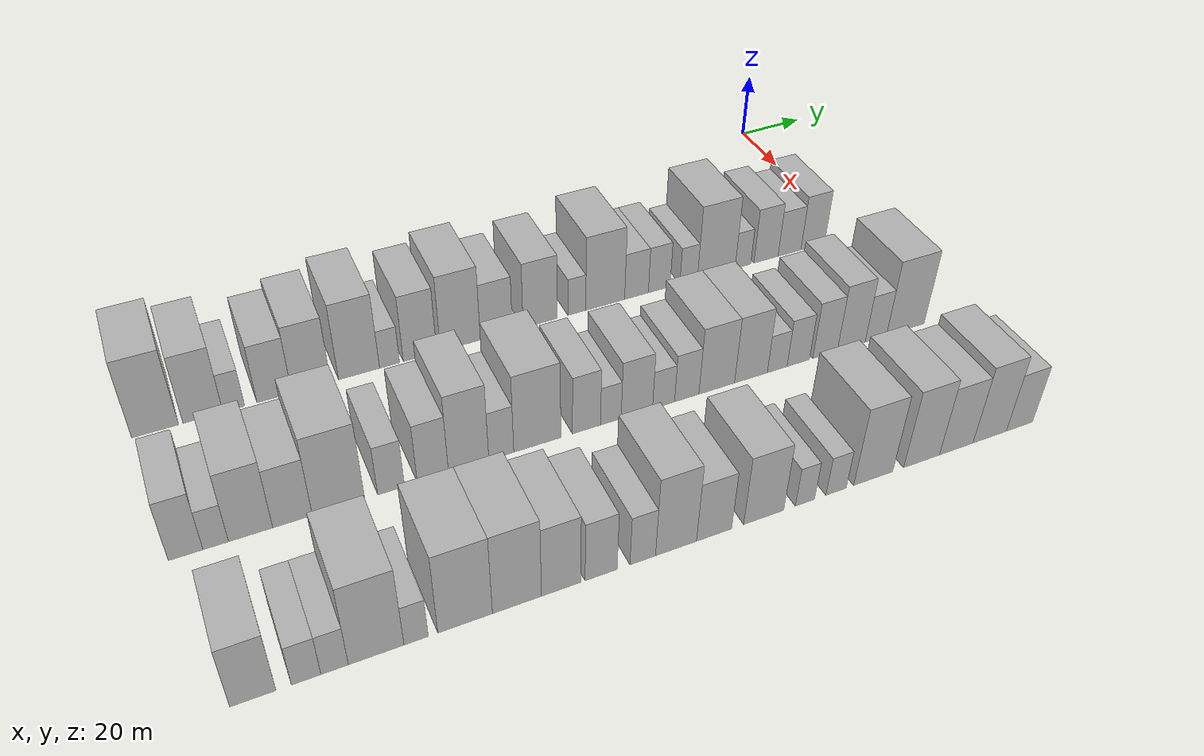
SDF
<sdf version="1.6">
 <world name="default">
  <model name="building_22">
   <static>1</static>
   <pose>50.0000 -193.8606 0 0.000000 0.000000 0.000000</pose>
   <link name="link">
    <pose>0 0 12.00 0 0 0</pose>
    <collision name="collision"><geometry><box><size>20.0000 10.9437 24.0000</size></box></geometry></collision>
    <visual name="visual">
     <cast_shadows>0</cast_shadows>
     <geometry><box><size>20.0000 10.9437 24.0000</size></box></geometry>
     <material>
      <script>
       <uri>model://HANNAS_wall/materials/scripts</uri>
       <uri>model://HANNAS_wall/materials/textures</uri>
       <name>vrc/HANNAS_wall</name>
      </script>
     </material>
    </visual>
   </link>
  </model>
  <model name="building_23">
   <static>1</static>
   <pose>50.0000 -182.6399 0 0.000000 0.000000 0.000000</pose>
   <link name="link">
    <pose>0 0 10.50 0 0 0</pose>
    <collision name="collision"><geometry><box><size>20.0000 9.4976 21.0000</size></box></geometry></collision>
    <visual name="visual">
     <cast_shadows>0</cast_shadows>
     <geometry><box><size>20.0000 9.4976 21.0000</size></box></geometry>
     <material>
      <script>
       <uri>model://HANNAS_wall/materials/scripts</uri>
       <uri>model://HANNAS_wall/materials/textures</uri>
       <name>vrc/HANNAS_wall</name>
      </script>
     </material>
    </visual>
   </link>
  </model>
  <model name="building_24">
   <static>1</static>
   <pose>50.0000 -175.2718 0 0.000000 0.000000 0.000000</pose>
   <link name="link">
    <pose>0 0 6.00 0 0 0</pose>
    <collision name="collision"><geometry><box><size>20.0000 5.2387 12.0000</size></box></geometry></collision>
    <visual name="visual">
     <cast_shadows>0</cast_shadows>
     <geometry><box><size>20.0000 5.2387 12.0000</size></box></geometry>
     <material>
      <script>
       <uri>model://HANNAS_wall/materials/scripts</uri>
       <uri>model://HANNAS_wall/materials/textures</uri>
       <name>vrc/HANNAS_wall</name>
      </script>
     </material>
    </visual>
   </link>
  </model>
  <model name="building_25">
   <static>1</static>
   <pose>50.0000 -165.3610 0 0.000000 0.000000 0.000000</pose>
   <link name="link">
    <pose>0 0 9.00 0 0 0</pose>
    <collision name="collision"><geometry><box><size>20.0000 8.5828 18.0000</size></box></geometry></collision>
    <visual name="visual">
     <cast_shadows>0</cast_shadows>
     <geometry><box><size>20.0000 8.5828 18.0000</size></box></geometry>
     <material>
      <script>
       <uri>model://HANNAS_wall/materials/scripts</uri>
       <uri>model://HANNAS_wall/materials/textures</uri>
       <name>vrc/HANNAS_wall</name>
      </script>
     </material>
    </visual>
   </link>
  </model>
  <model name="building_26">
   <static>1</static>
   <pose>50.0000 -156.2007 0 0.000000 0.000000 0.000000</pose>
   <link name="link">
    <pose>0 0 10.50 0 0 0</pose>
    <collision name="collision"><geometry><box><size>20.0000 9.7379 21.0000</size></box></geometry></collision>
    <visual name="visual">
     <cast_shadows>0</cast_shadows>
     <geometry><box><size>20.0000 9.7379 21.0000</size></box></geometry>
     <material>
      <script>
       <uri>model://HANNAS_wall/materials/scripts</uri>
       <uri>model://HANNAS_wall/materials/textures</uri>
       <name>vrc/HANNAS_wall</name>
      </script>
     </material>
    </visual>
   </link>
  </model>
  <model name="building_27">
   <static>1</static>
   <pose>50.0000 -144.0511 0 0.000000 0.000000 0.000000</pose>
   <link name="link">
    <pose>0 0 12.00 0 0 0</pose>
    <collision name="collision"><geometry><box><size>20.0000 10.5612 24.0000</size></box></geometry></collision>
    <visual name="visual">
     <cast_shadows>0</cast_shadows>
     <geometry><box><size>20.0000 10.5612 24.0000</size></box></geometry>
     <material>
      <script>
       <uri>model://HANNAS_wall/materials/scripts</uri>
       <uri>model://HANNAS_wall/materials/textures</uri>
       <name>vrc/HANNAS_wall</name>
      </script>
     </material>
    </visual>
   </link>
  </model>
  <model name="building_28">
   <static>1</static>
   <pose>50.0000 -136.1599 0 0.000000 0.000000 0.000000</pose>
   <link name="link">
    <pose>0 0 6.00 0 0 0</pose>
    <collision name="collision"><geometry><box><size>20.0000 5.2212 12.0000</size></box></geometry></collision>
    <visual name="visual">
     <cast_shadows>0</cast_shadows>
     <geometry><box><size>20.0000 5.2212 12.0000</size></box></geometry>
     <material>
      <script>
       <uri>model://HANNAS_wall/materials/scripts</uri>
       <uri>model://HANNAS_wall/materials/textures</uri>
       <name>vrc/HANNAS_wall</name>
      </script>
     </material>
    </visual>
   </link>
  </model>
  <model name="building_29">
   <static>1</static>
   <pose>50.0000 -128.1237 0 0.000000 0.000000 0.000000</pose>
   <link name="link">
    <pose>0 0 10.50 0 0 0</pose>
    <collision name="collision"><geometry><box><size>20.0000 8.8513 21.0000</size></box></geometry></collision>
    <visual name="visual">
     <cast_shadows>0</cast_shadows>
     <geometry><box><size>20.0000 8.8513 21.0000</size></box></geometry>
     <material>
      <script>
       <uri>model://HANNAS_wall/materials/scripts</uri>
       <uri>model://HANNAS_wall/materials/textures</uri>
       <name>vrc/HANNAS_wall</name>
      </script>
     </material>
    </visual>
   </link>
  </model>
  <model name="building_30">
   <static>1</static>
   <pose>50.0000 -117.2829 0 0.000000 0.000000 0.000000</pose>
   <link name="link">
    <pose>0 0 12.00 0 0 0</pose>
    <collision name="collision"><geometry><box><size>20.0000 10.8303 24.0000</size></box></geometry></collision>
    <visual name="visual">
     <cast_shadows>0</cast_shadows>
     <geometry><box><size>20.0000 10.8303 24.0000</size></box></geometry>
     <material>
      <script>
       <uri>model://HANNAS_wall/materials/scripts</uri>
       <uri>model://HANNAS_wall/materials/textures</uri>
       <name>vrc/HANNAS_wall</name>
      </script>
     </material>
    </visual>
   </link>
  </model>
  <model name="building_31">
   <static>1</static>
   <pose>50.0000 -107.4530 0 0.000000 0.000000 0.000000</pose>
   <link name="link">
    <pose>0 0 9.00 0 0 0</pose>
    <collision name="collision"><geometry><box><size>20.0000 8.8295 18.0000</size></box></geometry></collision>
    <visual name="visual">
     <cast_shadows>0</cast_shadows>
     <geometry><box><size>20.0000 8.8295 18.0000</size></box></geometry>
     <material>
      <script>
       <uri>model://HANNAS_wall/materials/scripts</uri>
       <uri>model://HANNAS_wall/materials/textures</uri>
       <name>vrc/HANNAS_wall</name>
      </script>
     </material>
    </visual>
   </link>
  </model>
  <model name="building_32">
   <static>1</static>
   <pose>50.0000 -95.1832 0 0.000000 0.000000 0.000000</pose>
   <link name="link">
    <pose>0 0 10.50 0 0 0</pose>
    <collision name="collision"><geometry><box><size>20.0000 9.7101 21.0000</size></box></geometry></collision>
    <visual name="visual">
     <cast_shadows>0</cast_shadows>
     <geometry><box><size>20.0000 9.7101 21.0000</size></box></geometry>
     <material>
      <script>
       <uri>model://HANNAS_wall/materials/scripts</uri>
       <uri>model://HANNAS_wall/materials/textures</uri>
       <name>vrc/HANNAS_wall</name>
      </script>
     </material>
    </visual>
   </link>
  </model>
  <model name="building_33">
   <static>1</static>
   <pose>50.0000 -84.7593 0 0.000000 0.000000 0.000000</pose>
   <link name="link">
    <pose>0 0 6.00 0 0 0</pose>
    <collision name="collision"><geometry><box><size>20.0000 5.1378 12.0000</size></box></geometry></collision>
    <visual name="visual">
     <cast_shadows>0</cast_shadows>
     <geometry><box><size>20.0000 5.1378 12.0000</size></box></geometry>
     <material>
      <script>
       <uri>model://HANNAS_wall/materials/scripts</uri>
       <uri>model://HANNAS_wall/materials/textures</uri>
       <name>vrc/HANNAS_wall</name>
      </script>
     </material>
    </visual>
   </link>
  </model>
  <model name="building_34">
   <static>1</static>
   <pose>50.0000 -76.4821 0 0.000000 0.000000 0.000000</pose>
   <link name="link">
    <pose>0 0 12.00 0 0 0</pose>
    <collision name="collision"><geometry><box><size>20.0000 11.4165 24.0000</size></box></geometry></collision>
    <visual name="visual">
     <cast_shadows>0</cast_shadows>
     <geometry><box><size>20.0000 11.4165 24.0000</size></box></geometry>
     <material>
      <script>
       <uri>model://HANNAS_wall/materials/scripts</uri>
       <uri>model://HANNAS_wall/materials/textures</uri>
       <name>vrc/HANNAS_wall</name>
      </script>
     </material>
    </visual>
   </link>
  </model>
  <model name="building_35">
   <static>1</static>
   <pose>50.0000 -67.2317 0 0.000000 0.000000 0.000000</pose>
   <link name="link">
    <pose>0 0 7.50 0 0 0</pose>
    <collision name="collision"><geometry><box><size>20.0000 7.0843 15.0000</size></box></geometry></collision>
    <visual name="visual">
     <cast_shadows>0</cast_shadows>
     <geometry><box><size>20.0000 7.0843 15.0000</size></box></geometry>
     <material>
      <script>
       <uri>model://HANNAS_wall/materials/scripts</uri>
       <uri>model://HANNAS_wall/materials/textures</uri>
       <name>vrc/HANNAS_wall</name>
      </script>
     </material>
    </visual>
   </link>
  </model>
  <model name="building_36">
   <static>1</static>
   <pose>50.0000 -60.4180 0 0.000000 0.000000 0.000000</pose>
   <link name="link">
    <pose>0 0 7.50 0 0 0</pose>
    <collision name="collision"><geometry><box><size>20.0000 6.5431 15.0000</size></box></geometry></collision>
    <visual name="visual">
     <cast_shadows>0</cast_shadows>
     <geometry><box><size>20.0000 6.5431 15.0000</size></box></geometry>
     <material>
      <script>
       <uri>model://HANNAS_wall/materials/scripts</uri>
       <uri>model://HANNAS_wall/materials/textures</uri>
       <name>vrc/HANNAS_wall</name>
      </script>
     </material>
    </visual>
   </link>
  </model>
  <model name="building_37">
   <static>1</static>
   <pose>50.0000 -51.4582 0 0.000000 0.000000 0.000000</pose>
   <link name="link">
    <pose>0 0 6.00 0 0 0</pose>
    <collision name="collision"><geometry><box><size>20.0000 5.3765 12.0000</size></box></geometry></collision>
    <visual name="visual">
     <cast_shadows>0</cast_shadows>
     <geometry><box><size>20.0000 5.3765 12.0000</size></box></geometry>
     <material>
      <script>
       <uri>model://HANNAS_wall/materials/scripts</uri>
       <uri>model://HANNAS_wall/materials/textures</uri>
       <name>vrc/HANNAS_wall</name>
      </script>
     </material>
    </visual>
   </link>
  </model>
  <model name="building_38">
   <static>1</static>
   <pose>50.0000 -42.8887 0 0.000000 0.000000 0.000000</pose>
   <link name="link">
    <pose>0 0 12.00 0 0 0</pose>
    <collision name="collision"><geometry><box><size>20.0000 11.7625 24.0000</size></box></geometry></collision>
    <visual name="visual">
     <cast_shadows>0</cast_shadows>
     <geometry><box><size>20.0000 11.7625 24.0000</size></box></geometry>
     <material>
      <script>
       <uri>model://HANNAS_wall/materials/scripts</uri>
       <uri>model://HANNAS_wall/materials/textures</uri>
       <name>vrc/HANNAS_wall</name>
      </script>
     </material>
    </visual>
   </link>
  </model>
  <model name="building_39">
   <static>1</static>
   <pose>50.0000 -34.5304 0 0.000000 0.000000 0.000000</pose>
   <link name="link">
    <pose>0 0 6.00 0 0 0</pose>
    <collision name="collision"><geometry><box><size>20.0000 4.9542 12.0000</size></box></geometry></collision>
    <visual name="visual">
     <cast_shadows>0</cast_shadows>
     <geometry><box><size>20.0000 4.9542 12.0000</size></box></geometry>
     <material>
      <script>
       <uri>model://HANNAS_wall/materials/scripts</uri>
       <uri>model://HANNAS_wall/materials/textures</uri>
       <name>vrc/HANNAS_wall</name>
      </script>
     </material>
    </visual>
   </link>
  </model>
  <model name="building_40">
   <static>1</static>
   <pose>50.0000 -27.1626 0 0.000000 0.000000 0.000000</pose>
   <link name="link">
    <pose>0 0 9.00 0 0 0</pose>
    <collision name="collision"><geometry><box><size>20.0000 7.7813 18.0000</size></box></geometry></collision>
    <visual name="visual">
     <cast_shadows>0</cast_shadows>
     <geometry><box><size>20.0000 7.7813 18.0000</size></box></geometry>
     <material>
      <script>
       <uri>model://HANNAS_wall/materials/scripts</uri>
       <uri>model://HANNAS_wall/materials/textures</uri>
       <name>vrc/HANNAS_wall</name>
      </script>
     </material>
    </visual>
   </link>
  </model>
  <model name="building_41">
   <static>1</static>
   <pose>50.0000 -19.5471 0 0.000000 0.000000 0.000000</pose>
   <link name="link">
    <pose>0 0 7.50 0 0 0</pose>
    <collision name="collision"><geometry><box><size>20.0000 7.4498 15.0000</size></box></geometry></collision>
    <visual name="visual">
     <cast_shadows>0</cast_shadows>
     <geometry><box><size>20.0000 7.4498 15.0000</size></box></geometry>
     <material>
      <script>
       <uri>model://HANNAS_wall/materials/scripts</uri>
       <uri>model://HANNAS_wall/materials/textures</uri>
       <name>vrc/HANNAS_wall</name>
      </script>
     </material>
    </visual>
   </link>
  </model>
  <model name="building_42">
   <static>1</static>
   <pose>50.0000 -11.9231 0 0.000000 0.000000 0.000000</pose>
   <link name="link">
    <pose>0 0 9.00 0 0 0</pose>
    <collision name="collision"><geometry><box><size>20.0000 7.7983 18.0000</size></box></geometry></collision>
    <visual name="visual">
     <cast_shadows>0</cast_shadows>
     <geometry><box><size>20.0000 7.7983 18.0000</size></box></geometry>
     <material>
      <script>
       <uri>model://HANNAS_wall/materials/scripts</uri>
       <uri>model://HANNAS_wall/materials/textures</uri>
       <name>vrc/HANNAS_wall</name>
      </script>
     </material>
    </visual>
   </link>
  </model>
  <model name="building_104">
   <static>1</static>
   <pose>90.0000 -193.6263 0 0.000000 0.000000 0.000000</pose>
   <link name="link">
    <pose>0 0 9.00 0 0 0</pose>
    <collision name="collision"><geometry><box><size>20.0000 7.3427 18.0000</size></box></geometry></collision>
    <visual name="visual">
     <cast_shadows>0</cast_shadows>
     <geometry><box><size>20.0000 7.3427 18.0000</size></box></geometry>
     <material>
      <script>
       <uri>model://HANNAS_wall/materials/scripts</uri>
       <uri>model://HANNAS_wall/materials/textures</uri>
       <name>vrc/HANNAS_wall</name>
      </script>
     </material>
    </visual>
   </link>
  </model>
  <model name="building_105">
   <static>1</static>
   <pose>90.0000 -187.2141 0 0.000000 0.000000 0.000000</pose>
   <link name="link">
    <pose>0 0 6.00 0 0 0</pose>
    <collision name="collision"><geometry><box><size>20.0000 5.4816 12.0000</size></box></geometry></collision>
    <visual name="visual">
     <cast_shadows>0</cast_shadows>
     <geometry><box><size>20.0000 5.4816 12.0000</size></box></geometry>
     <material>
      <script>
       <uri>model://HANNAS_wall/materials/scripts</uri>
       <uri>model://HANNAS_wall/materials/textures</uri>
       <name>vrc/HANNAS_wall</name>
      </script>
     </material>
    </visual>
   </link>
  </model>
  <model name="building_106">
   <static>1</static>
   <pose>90.0000 -179.6539 0 0.000000 0.000000 0.000000</pose>
   <link name="link">
    <pose>0 0 10.50 0 0 0</pose>
    <collision name="collision"><geometry><box><size>20.0000 9.6388 21.0000</size></box></geometry></collision>
    <visual name="visual">
     <cast_shadows>0</cast_shadows>
     <geometry><box><size>20.0000 9.6388 21.0000</size></box></geometry>
     <material>
      <script>
       <uri>model://HANNAS_wall/materials/scripts</uri>
       <uri>model://HANNAS_wall/materials/textures</uri>
       <name>vrc/HANNAS_wall</name>
      </script>
     </material>
    </visual>
   </link>
  </model>
  <model name="building_107">
   <static>1</static>
   <pose>90.0000 -170.4304 0 0.000000 0.000000 0.000000</pose>
   <link name="link">
    <pose>0 0 9.00 0 0 0</pose>
    <collision name="collision"><geometry><box><size>20.0000 8.8081 18.0000</size></box></geometry></collision>
    <visual name="visual">
     <cast_shadows>0</cast_shadows>
     <geometry><box><size>20.0000 8.8081 18.0000</size></box></geometry>
     <material>
      <script>
       <uri>model://HANNAS_wall/materials/scripts</uri>
       <uri>model://HANNAS_wall/materials/textures</uri>
       <name>vrc/HANNAS_wall</name>
      </script>
     </material>
    </visual>
   </link>
  </model>
  <model name="building_108">
   <static>1</static>
   <pose>90.0000 -160.0560 0 0.000000 0.000000 0.000000</pose>
   <link name="link">
    <pose>0 0 12.00 0 0 0</pose>
    <collision name="collision"><geometry><box><size>20.0000 11.9408 24.0000</size></box></geometry></collision>
    <visual name="visual">
     <cast_shadows>0</cast_shadows>
     <geometry><box><size>20.0000 11.9408 24.0000</size></box></geometry>
     <material>
      <script>
       <uri>model://HANNAS_wall/materials/scripts</uri>
       <uri>model://HANNAS_wall/materials/textures</uri>
       <name>vrc/HANNAS_wall</name>
      </script>
     </material>
    </visual>
   </link>
  </model>
  <model name="building_109">
   <static>1</static>
   <pose>90.0000 -147.9394 0 0.000000 0.000000 0.000000</pose>
   <link name="link">
    <pose>0 0 7.50 0 0 0</pose>
    <collision name="collision"><geometry><box><size>20.0000 6.2924 15.0000</size></box></geometry></collision>
    <visual name="visual">
     <cast_shadows>0</cast_shadows>
     <geometry><box><size>20.0000 6.2924 15.0000</size></box></geometry>
     <material>
      <script>
       <uri>model://HANNAS_wall/materials/scripts</uri>
       <uri>model://HANNAS_wall/materials/textures</uri>
       <name>vrc/HANNAS_wall</name>
      </script>
     </material>
    </visual>
   </link>
  </model>
  <model name="building_110">
   <static>1</static>
   <pose>90.0000 -138.0531 0 0.000000 0.000000 0.000000</pose>
   <link name="link">
    <pose>0 0 9.00 0 0 0</pose>
    <collision name="collision"><geometry><box><size>20.0000 7.4801 18.0000</size></box></geometry></collision>
    <visual name="visual">
     <cast_shadows>0</cast_shadows>
     <geometry><box><size>20.0000 7.4801 18.0000</size></box></geometry>
     <material>
      <script>
       <uri>model://HANNAS_wall/materials/scripts</uri>
       <uri>model://HANNAS_wall/materials/textures</uri>
       <name>vrc/HANNAS_wall</name>
      </script>
     </material>
    </visual>
   </link>
  </model>
  <model name="building_111">
   <static>1</static>
   <pose>90.0000 -129.3967 0 0.000000 0.000000 0.000000</pose>
   <link name="link">
    <pose>0 0 12.00 0 0 0</pose>
    <collision name="collision"><geometry><box><size>20.0000 9.8327 24.0000</size></box></geometry></collision>
    <visual name="visual">
     <cast_shadows>0</cast_shadows>
     <geometry><box><size>20.0000 9.8327 24.0000</size></box></geometry>
     <material>
      <script>
       <uri>model://HANNAS_wall/materials/scripts</uri>
       <uri>model://HANNAS_wall/materials/textures</uri>
       <name>vrc/HANNAS_wall</name>
      </script>
     </material>
    </visual>
   </link>
  </model>
  <model name="building_112">
   <static>1</static>
   <pose>90.0000 -121.3821 0 0.000000 0.000000 0.000000</pose>
   <link name="link">
    <pose>0 0 7.50 0 0 0</pose>
    <collision name="collision"><geometry><box><size>20.0000 6.1965 15.0000</size></box></geometry></collision>
    <visual name="visual">
     <cast_shadows>0</cast_shadows>
     <geometry><box><size>20.0000 6.1965 15.0000</size></box></geometry>
     <material>
      <script>
       <uri>model://HANNAS_wall/materials/scripts</uri>
       <uri>model://HANNAS_wall/materials/textures</uri>
       <name>vrc/HANNAS_wall</name>
      </script>
     </material>
    </visual>
   </link>
  </model>
  <model name="building_113">
   <static>1</static>
   <pose>90.0000 -112.3388 0 0.000000 0.000000 0.000000</pose>
   <link name="link">
    <pose>0 0 12.00 0 0 0</pose>
    <collision name="collision"><geometry><box><size>20.0000 11.8901 24.0000</size></box></geometry></collision>
    <visual name="visual">
     <cast_shadows>0</cast_shadows>
     <geometry><box><size>20.0000 11.8901 24.0000</size></box></geometry>
     <material>
      <script>
       <uri>model://HANNAS_wall/materials/scripts</uri>
       <uri>model://HANNAS_wall/materials/textures</uri>
       <name>vrc/HANNAS_wall</name>
      </script>
     </material>
    </visual>
   </link>
  </model>
  <model name="building_114">
   <static>1</static>
   <pose>90.0000 -99.7647 0 0.000000 0.000000 0.000000</pose>
   <link name="link">
    <pose>0 0 9.00 0 0 0</pose>
    <collision name="collision"><geometry><box><size>20.0000 7.2581 18.0000</size></box></geometry></collision>
    <visual name="visual">
     <cast_shadows>0</cast_shadows>
     <geometry><box><size>20.0000 7.2581 18.0000</size></box></geometry>
     <material>
      <script>
       <uri>model://HANNAS_wall/materials/scripts</uri>
       <uri>model://HANNAS_wall/materials/textures</uri>
       <name>vrc/HANNAS_wall</name>
      </script>
     </material>
    </visual>
   </link>
  </model>
  <model name="building_115">
   <static>1</static>
   <pose>90.0000 -93.4018 0 0.000000 0.000000 0.000000</pose>
   <link name="link">
    <pose>0 0 6.00 0 0 0</pose>
    <collision name="collision"><geometry><box><size>20.0000 5.4676 12.0000</size></box></geometry></collision>
    <visual name="visual">
     <cast_shadows>0</cast_shadows>
     <geometry><box><size>20.0000 5.4676 12.0000</size></box></geometry>
     <material>
      <script>
       <uri>model://HANNAS_wall/materials/scripts</uri>
       <uri>model://HANNAS_wall/materials/textures</uri>
       <name>vrc/HANNAS_wall</name>
      </script>
     </material>
    </visual>
   </link>
  </model>
  <model name="building_116">
   <static>1</static>
   <pose>90.0000 -86.4742 0 0.000000 0.000000 0.000000</pose>
   <link name="link">
    <pose>0 0 9.00 0 0 0</pose>
    <collision name="collision"><geometry><box><size>20.0000 8.3877 18.0000</size></box></geometry></collision>
    <visual name="visual">
     <cast_shadows>0</cast_shadows>
     <geometry><box><size>20.0000 8.3877 18.0000</size></box></geometry>
     <material>
      <script>
       <uri>model://HANNAS_wall/materials/scripts</uri>
       <uri>model://HANNAS_wall/materials/textures</uri>
       <name>vrc/HANNAS_wall</name>
      </script>
     </material>
    </visual>
   </link>
  </model>
  <model name="building_117">
   <static>1</static>
   <pose>90.0000 -79.2956 0 0.000000 0.000000 0.000000</pose>
   <link name="link">
    <pose>0 0 6.00 0 0 0</pose>
    <collision name="collision"><geometry><box><size>20.0000 5.9695 12.0000</size></box></geometry></collision>
    <visual name="visual">
     <cast_shadows>0</cast_shadows>
     <geometry><box><size>20.0000 5.9695 12.0000</size></box></geometry>
     <material>
      <script>
       <uri>model://HANNAS_wall/materials/scripts</uri>
       <uri>model://HANNAS_wall/materials/textures</uri>
       <name>vrc/HANNAS_wall</name>
      </script>
     </material>
    </visual>
   </link>
  </model>
  <model name="building_118">
   <static>1</static>
   <pose>90.0000 -72.9613 0 0.000000 0.000000 0.000000</pose>
   <link name="link">
    <pose>0 0 7.50 0 0 0</pose>
    <collision name="collision"><geometry><box><size>20.0000 6.6991 15.0000</size></box></geometry></collision>
    <visual name="visual">
     <cast_shadows>0</cast_shadows>
     <geometry><box><size>20.0000 6.6991 15.0000</size></box></geometry>
     <material>
      <script>
       <uri>model://HANNAS_wall/materials/scripts</uri>
       <uri>model://HANNAS_wall/materials/textures</uri>
       <name>vrc/HANNAS_wall</name>
      </script>
     </material>
    </visual>
   </link>
  </model>
  <model name="building_119">
   <static>1</static>
   <pose>90.0000 -64.6266 0 0.000000 0.000000 0.000000</pose>
   <link name="link">
    <pose>0 0 10.50 0 0 0</pose>
    <collision name="collision"><geometry><box><size>20.0000 9.9703 21.0000</size></box></geometry></collision>
    <visual name="visual">
     <cast_shadows>0</cast_shadows>
     <geometry><box><size>20.0000 9.9703 21.0000</size></box></geometry>
     <material>
      <script>
       <uri>model://HANNAS_wall/materials/scripts</uri>
       <uri>model://HANNAS_wall/materials/textures</uri>
       <name>vrc/HANNAS_wall</name>
      </script>
     </material>
    </visual>
   </link>
  </model>
  <model name="building_120">
   <static>1</static>
   <pose>90.0000 -54.9750 0 0.000000 0.000000 0.000000</pose>
   <link name="link">
    <pose>0 0 10.50 0 0 0</pose>
    <collision name="collision"><geometry><box><size>20.0000 9.3330 21.0000</size></box></geometry></collision>
    <visual name="visual">
     <cast_shadows>0</cast_shadows>
     <geometry><box><size>20.0000 9.3330 21.0000</size></box></geometry>
     <material>
      <script>
       <uri>model://HANNAS_wall/materials/scripts</uri>
       <uri>model://HANNAS_wall/materials/textures</uri>
       <name>vrc/HANNAS_wall</name>
      </script>
     </material>
    </visual>
   </link>
  </model>
  <model name="building_121">
   <static>1</static>
   <pose>90.0000 -47.4517 0 0.000000 0.000000 0.000000</pose>
   <link name="link">
    <pose>0 0 6.00 0 0 0</pose>
    <collision name="collision"><geometry><box><size>20.0000 5.7136 12.0000</size></box></geometry></collision>
    <visual name="visual">
     <cast_shadows>0</cast_shadows>
     <geometry><box><size>20.0000 5.7136 12.0000</size></box></geometry>
     <material>
      <script>
       <uri>model://HANNAS_wall/materials/scripts</uri>
       <uri>model://HANNAS_wall/materials/textures</uri>
       <name>vrc/HANNAS_wall</name>
      </script>
     </material>
    </visual>
   </link>
  </model>
  <model name="building_122">
   <static>1</static>
   <pose>90.0000 -41.3260 0 0.000000 0.000000 0.000000</pose>
   <link name="link">
    <pose>0 0 7.50 0 0 0</pose>
    <collision name="collision"><geometry><box><size>20.0000 6.5379 15.0000</size></box></geometry></collision>
    <visual name="visual">
     <cast_shadows>0</cast_shadows>
     <geometry><box><size>20.0000 6.5379 15.0000</size></box></geometry>
     <material>
      <script>
       <uri>model://HANNAS_wall/materials/scripts</uri>
       <uri>model://HANNAS_wall/materials/textures</uri>
       <name>vrc/HANNAS_wall</name>
      </script>
     </material>
    </visual>
   </link>
  </model>
  <model name="building_123">
   <static>1</static>
   <pose>90.0000 -33.3989 0 0.000000 0.000000 0.000000</pose>
   <link name="link">
    <pose>0 0 9.00 0 0 0</pose>
    <collision name="collision"><geometry><box><size>20.0000 7.3162 18.0000</size></box></geometry></collision>
    <visual name="visual">
     <cast_shadows>0</cast_shadows>
     <geometry><box><size>20.0000 7.3162 18.0000</size></box></geometry>
     <material>
      <script>
       <uri>model://HANNAS_wall/materials/scripts</uri>
       <uri>model://HANNAS_wall/materials/textures</uri>
       <name>vrc/HANNAS_wall</name>
      </script>
     </material>
    </visual>
   </link>
  </model>
  <model name="building_124">
   <static>1</static>
   <pose>90.0000 -25.5329 0 0.000000 0.000000 0.000000</pose>
   <link name="link">
    <pose>0 0 10.50 0 0 0</pose>
    <collision name="collision"><geometry><box><size>20.0000 8.4158 21.0000</size></box></geometry></collision>
    <visual name="visual">
     <cast_shadows>0</cast_shadows>
     <geometry><box><size>20.0000 8.4158 21.0000</size></box></geometry>
     <material>
      <script>
       <uri>model://HANNAS_wall/materials/scripts</uri>
       <uri>model://HANNAS_wall/materials/textures</uri>
       <name>vrc/HANNAS_wall</name>
      </script>
     </material>
    </visual>
   </link>
  </model>
  <model name="building_125">
   <static>1</static>
   <pose>90.0000 -18.0663 0 0.000000 0.000000 0.000000</pose>
   <link name="link">
    <pose>0 0 7.50 0 0 0</pose>
    <collision name="collision"><geometry><box><size>20.0000 6.5173 15.0000</size></box></geometry></collision>
    <visual name="visual">
     <cast_shadows>0</cast_shadows>
     <geometry><box><size>20.0000 6.5173 15.0000</size></box></geometry>
     <material>
      <script>
       <uri>model://HANNAS_wall/materials/scripts</uri>
       <uri>model://HANNAS_wall/materials/textures</uri>
       <name>vrc/HANNAS_wall</name>
      </script>
     </material>
    </visual>
   </link>
  </model>
  <model name="building_126">
   <static>1</static>
   <pose>90.0000 -8.9338 0 0.000000 0.000000 0.000000</pose>
   <link name="link">
    <pose>0 0 12.00 0 0 0</pose>
    <collision name="collision"><geometry><box><size>20.0000 11.7477 24.0000</size></box></geometry></collision>
    <visual name="visual">
     <cast_shadows>0</cast_shadows>
     <geometry><box><size>20.0000 11.7477 24.0000</size></box></geometry>
     <material>
      <script>
       <uri>model://HANNAS_wall/materials/scripts</uri>
       <uri>model://HANNAS_wall/materials/textures</uri>
       <name>vrc/HANNAS_wall</name>
      </script>
     </material>
    </visual>
   </link>
  </model>
  <model name="building_191">
   <static>1</static>
   <pose>130.0000 -187.7436 0 0.000000 0.000000 0.000000</pose>
   <link name="link">
    <pose>0 0 9.00 0 0 0</pose>
    <collision name="collision"><geometry><box><size>20.0000 8.9436 18.0000</size></box></geometry></collision>
    <visual name="visual">
     <cast_shadows>0</cast_shadows>
     <geometry><box><size>20.0000 8.9436 18.0000</size></box></geometry>
     <material>
      <script>
       <uri>model://HANNAS_wall/materials/scripts</uri>
       <uri>model://HANNAS_wall/materials/textures</uri>
       <name>vrc/HANNAS_wall</name>
      </script>
     </material>
    </visual>
   </link>
  </model>
  <model name="building_192">
   <static>1</static>
   <pose>130.0000 -177.3389 0 0.000000 0.000000 0.000000</pose>
   <link name="link">
    <pose>0 0 6.00 0 0 0</pose>
    <collision name="collision"><geometry><box><size>20.0000 5.8659 12.0000</size></box></geometry></collision>
    <visual name="visual">
     <cast_shadows>0</cast_shadows>
     <geometry><box><size>20.0000 5.8659 12.0000</size></box></geometry>
     <material>
      <script>
       <uri>model://HANNAS_wall/materials/scripts</uri>
       <uri>model://HANNAS_wall/materials/textures</uri>
       <name>vrc/HANNAS_wall</name>
      </script>
     </material>
    </visual>
   </link>
  </model>
  <model name="building_193">
   <static>1</static>
   <pose>130.0000 -171.6527 0 0.000000 0.000000 0.000000</pose>
   <link name="link">
    <pose>0 0 6.00 0 0 0</pose>
    <collision name="collision"><geometry><box><size>20.0000 5.5064 12.0000</size></box></geometry></collision>
    <visual name="visual">
     <cast_shadows>0</cast_shadows>
     <geometry><box><size>20.0000 5.5064 12.0000</size></box></geometry>
     <material>
      <script>
       <uri>model://HANNAS_wall/materials/scripts</uri>
       <uri>model://HANNAS_wall/materials/textures</uri>
       <name>vrc/HANNAS_wall</name>
      </script>
     </material>
    </visual>
   </link>
  </model>
  <model name="building_194">
   <static>1</static>
   <pose>130.0000 -163.1820 0 0.000000 0.000000 0.000000</pose>
   <link name="link">
    <pose>0 0 12.00 0 0 0</pose>
    <collision name="collision"><geometry><box><size>20.0000 11.4350 24.0000</size></box></geometry></collision>
    <visual name="visual">
     <cast_shadows>0</cast_shadows>
     <geometry><box><size>20.0000 11.4350 24.0000</size></box></geometry>
     <material>
      <script>
       <uri>model://HANNAS_wall/materials/scripts</uri>
       <uri>model://HANNAS_wall/materials/textures</uri>
       <name>vrc/HANNAS_wall</name>
      </script>
     </material>
    </visual>
   </link>
  </model>
  <model name="building_195">
   <static>1</static>
   <pose>130.0000 -154.9226 0 0.000000 0.000000 0.000000</pose>
   <link name="link">
    <pose>0 0 6.00 0 0 0</pose>
    <collision name="collision"><geometry><box><size>20.0000 5.0838 12.0000</size></box></geometry></collision>
    <visual name="visual">
     <cast_shadows>0</cast_shadows>
     <geometry><box><size>20.0000 5.0838 12.0000</size></box></geometry>
     <material>
      <script>
       <uri>model://HANNAS_wall/materials/scripts</uri>
       <uri>model://HANNAS_wall/materials/textures</uri>
       <name>vrc/HANNAS_wall</name>
      </script>
     </material>
    </visual>
   </link>
  </model>
  <model name="building_196">
   <static>1</static>
   <pose>130.0000 -144.4950 0 0.000000 0.000000 0.000000</pose>
   <link name="link">
    <pose>0 0 12.00 0 0 0</pose>
    <collision name="collision"><geometry><box><size>20.0000 11.7713 24.0000</size></box></geometry></collision>
    <visual name="visual">
     <cast_shadows>0</cast_shadows>
     <geometry><box><size>20.0000 11.7713 24.0000</size></box></geometry>
     <material>
      <script>
       <uri>model://HANNAS_wall/materials/scripts</uri>
       <uri>model://HANNAS_wall/materials/textures</uri>
       <name>vrc/HANNAS_wall</name>
      </script>
     </material>
    </visual>
   </link>
  </model>
  <model name="building_197">
   <static>1</static>
   <pose>130.0000 -133.1901 0 0.000000 0.000000 0.000000</pose>
   <link name="link">
    <pose>0 0 12.00 0 0 0</pose>
    <collision name="collision"><geometry><box><size>20.0000 10.8387 24.0000</size></box></geometry></collision>
    <visual name="visual">
     <cast_shadows>0</cast_shadows>
     <geometry><box><size>20.0000 10.8387 24.0000</size></box></geometry>
     <material>
      <script>
       <uri>model://HANNAS_wall/materials/scripts</uri>
       <uri>model://HANNAS_wall/materials/textures</uri>
       <name>vrc/HANNAS_wall</name>
      </script>
     </material>
    </visual>
   </link>
  </model>
  <model name="building_198">
   <static>1</static>
   <pose>130.0000 -123.3362 0 0.000000 0.000000 0.000000</pose>
   <link name="link">
    <pose>0 0 10.50 0 0 0</pose>
    <collision name="collision"><geometry><box><size>20.0000 8.8690 21.0000</size></box></geometry></collision>
    <visual name="visual">
     <cast_shadows>0</cast_shadows>
     <geometry><box><size>20.0000 8.8690 21.0000</size></box></geometry>
     <material>
      <script>
       <uri>model://HANNAS_wall/materials/scripts</uri>
       <uri>model://HANNAS_wall/materials/textures</uri>
       <name>vrc/HANNAS_wall</name>
      </script>
     </material>
    </visual>
   </link>
  </model>
  <model name="building_199">
   <static>1</static>
   <pose>130.0000 -114.1895 0 0.000000 0.000000 0.000000</pose>
   <link name="link">
    <pose>0 0 9.00 0 0 0</pose>
    <collision name="collision"><geometry><box><size>20.0000 7.4245 18.0000</size></box></geometry></collision>
    <visual name="visual">
     <cast_shadows>0</cast_shadows>
     <geometry><box><size>20.0000 7.4245 18.0000</size></box></geometry>
     <material>
      <script>
       <uri>model://HANNAS_wall/materials/scripts</uri>
       <uri>model://HANNAS_wall/materials/textures</uri>
       <name>vrc/HANNAS_wall</name>
      </script>
     </material>
    </visual>
   </link>
  </model>
  <model name="building_200">
   <static>1</static>
   <pose>130.0000 -104.4455 0 0.000000 0.000000 0.000000</pose>
   <link name="link">
    <pose>0 0 7.50 0 0 0</pose>
    <collision name="collision"><geometry><box><size>20.0000 6.0635 15.0000</size></box></geometry></collision>
    <visual name="visual">
     <cast_shadows>0</cast_shadows>
     <geometry><box><size>20.0000 6.0635 15.0000</size></box></geometry>
     <material>
      <script>
       <uri>model://HANNAS_wall/materials/scripts</uri>
       <uri>model://HANNAS_wall/materials/textures</uri>
       <name>vrc/HANNAS_wall</name>
      </script>
     </material>
    </visual>
   </link>
  </model>
  <model name="building_201">
   <static>1</static>
   <pose>130.0000 -96.4690 0 0.000000 0.000000 0.000000</pose>
   <link name="link">
    <pose>0 0 12.00 0 0 0</pose>
    <collision name="collision"><geometry><box><size>20.0000 9.8895 24.0000</size></box></geometry></collision>
    <visual name="visual">
     <cast_shadows>0</cast_shadows>
     <geometry><box><size>20.0000 9.8895 24.0000</size></box></geometry>
     <material>
      <script>
       <uri>model://HANNAS_wall/materials/scripts</uri>
       <uri>model://HANNAS_wall/materials/textures</uri>
       <name>vrc/HANNAS_wall</name>
      </script>
     </material>
    </visual>
   </link>
  </model>
  <model name="building_202">
   <static>1</static>
   <pose>130.0000 -87.1921 0 0.000000 0.000000 0.000000</pose>
   <link name="link">
    <pose>0 0 9.00 0 0 0</pose>
    <collision name="collision"><geometry><box><size>20.0000 8.6643 18.0000</size></box></geometry></collision>
    <visual name="visual">
     <cast_shadows>0</cast_shadows>
     <geometry><box><size>20.0000 8.6643 18.0000</size></box></geometry>
     <material>
      <script>
       <uri>model://HANNAS_wall/materials/scripts</uri>
       <uri>model://HANNAS_wall/materials/textures</uri>
       <name>vrc/HANNAS_wall</name>
      </script>
     </material>
    </visual>
   </link>
  </model>
  <model name="building_203">
   <static>1</static>
   <pose>130.0000 -74.7785 0 0.000000 0.000000 0.000000</pose>
   <link name="link">
    <pose>0 0 10.50 0 0 0</pose>
    <collision name="collision"><geometry><box><size>20.0000 10.1629 21.0000</size></box></geometry></collision>
    <visual name="visual">
     <cast_shadows>0</cast_shadows>
     <geometry><box><size>20.0000 10.1629 21.0000</size></box></geometry>
     <material>
      <script>
       <uri>model://HANNAS_wall/materials/scripts</uri>
       <uri>model://HANNAS_wall/materials/textures</uri>
       <name>vrc/HANNAS_wall</name>
      </script>
     </material>
    </visual>
   </link>
  </model>
  <model name="building_204">
   <static>1</static>
   <pose>130.0000 -64.2121 0 0.000000 0.000000 0.000000</pose>
   <link name="link">
    <pose>0 0 6.00 0 0 0</pose>
    <collision name="collision"><geometry><box><size>20.0000 4.9701 12.0000</size></box></geometry></collision>
    <visual name="visual">
     <cast_shadows>0</cast_shadows>
     <geometry><box><size>20.0000 4.9701 12.0000</size></box></geometry>
     <material>
      <script>
       <uri>model://HANNAS_wall/materials/scripts</uri>
       <uri>model://HANNAS_wall/materials/textures</uri>
       <name>vrc/HANNAS_wall</name>
      </script>
     </material>
    </visual>
   </link>
  </model>
  <model name="building_205">
   <static>1</static>
   <pose>130.0000 -56.0407 0 0.000000 0.000000 0.000000</pose>
   <link name="link">
    <pose>0 0 6.00 0 0 0</pose>
    <collision name="collision"><geometry><box><size>20.0000 5.3727 12.0000</size></box></geometry></collision>
    <visual name="visual">
     <cast_shadows>0</cast_shadows>
     <geometry><box><size>20.0000 5.3727 12.0000</size></box></geometry>
     <material>
      <script>
       <uri>model://HANNAS_wall/materials/scripts</uri>
       <uri>model://HANNAS_wall/materials/textures</uri>
       <name>vrc/HANNAS_wall</name>
      </script>
     </material>
    </visual>
   </link>
  </model>
  <model name="building_206">
   <static>1</static>
   <pose>130.0000 -46.0741 0 0.000000 0.000000 0.000000</pose>
   <link name="link">
    <pose>0 0 12.00 0 0 0</pose>
    <collision name="collision"><geometry><box><size>20.0000 10.5604 24.0000</size></box></geometry></collision>
    <visual name="visual">
     <cast_shadows>0</cast_shadows>
     <geometry><box><size>20.0000 10.5604 24.0000</size></box></geometry>
     <material>
      <script>
       <uri>model://HANNAS_wall/materials/scripts</uri>
       <uri>model://HANNAS_wall/materials/textures</uri>
       <name>vrc/HANNAS_wall</name>
      </script>
     </material>
    </visual>
   </link>
  </model>
  <model name="building_207">
   <static>1</static>
   <pose>130.0000 -32.8057 0 0.000000 0.000000 0.000000</pose>
   <link name="link">
    <pose>0 0 12.00 0 0 0</pose>
    <collision name="collision"><geometry><box><size>20.0000 9.9764 24.0000</size></box></geometry></collision>
    <visual name="visual">
     <cast_shadows>0</cast_shadows>
     <geometry><box><size>20.0000 9.9764 24.0000</size></box></geometry>
     <material>
      <script>
       <uri>model://HANNAS_wall/materials/scripts</uri>
       <uri>model://HANNAS_wall/materials/textures</uri>
       <name>vrc/HANNAS_wall</name>
      </script>
     </material>
    </visual>
   </link>
  </model>
  <model name="building_208">
   <static>1</static>
   <pose>130.0000 -23.0531 0 0.000000 0.000000 0.000000</pose>
   <link name="link">
    <pose>0 0 10.50 0 0 0</pose>
    <collision name="collision"><geometry><box><size>20.0000 9.5287 21.0000</size></box></geometry></collision>
    <visual name="visual">
     <cast_shadows>0</cast_shadows>
     <geometry><box><size>20.0000 9.5287 21.0000</size></box></geometry>
     <material>
      <script>
       <uri>model://HANNAS_wall/materials/scripts</uri>
       <uri>model://HANNAS_wall/materials/textures</uri>
       <name>vrc/HANNAS_wall</name>
      </script>
     </material>
    </visual>
   </link>
  </model>
  <model name="building_209">
   <static>1</static>
   <pose>130.0000 -13.4413 0 0.000000 0.000000 0.000000</pose>
   <link name="link">
    <pose>0 0 12.00 0 0 0</pose>
    <collision name="collision"><geometry><box><size>20.0000 9.6948 24.0000</size></box></geometry></collision>
    <visual name="visual">
     <cast_shadows>0</cast_shadows>
     <geometry><box><size>20.0000 9.6948 24.0000</size></box></geometry>
     <material>
      <script>
       <uri>model://HANNAS_wall/materials/scripts</uri>
       <uri>model://HANNAS_wall/materials/textures</uri>
       <name>vrc/HANNAS_wall</name>
      </script>
     </material>
    </visual>
   </link>
  </model>
  <model name="building_210">
   <static>1</static>
   <pose>130.0000 -4.7286 0 0.000000 0.000000 0.000000</pose>
   <link name="link">
    <pose>0 0 9.00 0 0 0</pose>
    <collision name="collision"><geometry><box><size>20.0000 7.7306 18.0000</size></box></geometry></collision>
    <visual name="visual">
     <cast_shadows>0</cast_shadows>
     <geometry><box><size>20.0000 7.7306 18.0000</size></box></geometry>
     <material>
      <script>
       <uri>model://HANNAS_wall/materials/scripts</uri>
       <uri>model://HANNAS_wall/materials/textures</uri>
       <name>vrc/HANNAS_wall</name>
      </script>
     </material>
    </visual>
   </link>
  </model>
 </world>
</sdf>
